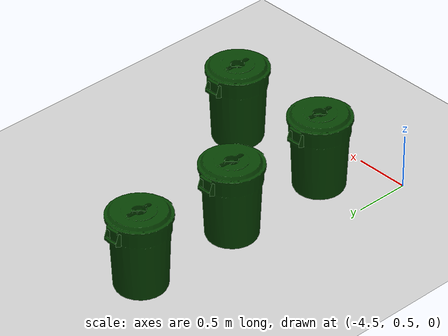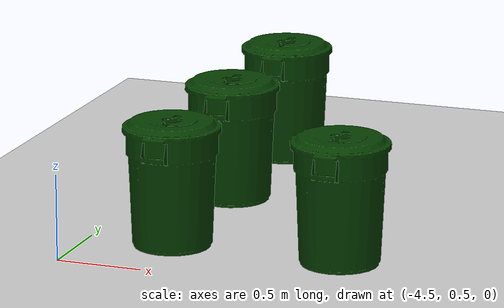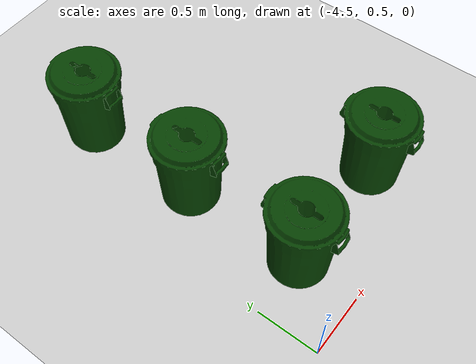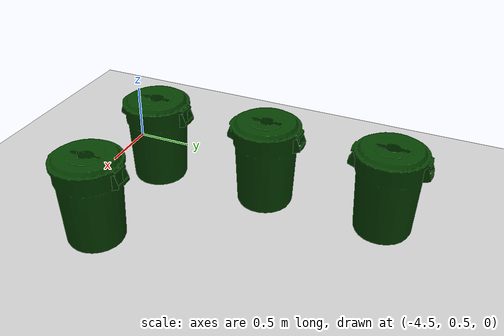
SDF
<sdf version="1.7">
 <world name="default">
  <light name="sun" type="directional">
   <pose>0 0 10 0 -0 0</pose>
   <diffuse>0.8 0.8 0.8 1</diffuse>
   <specular>0.2 0.2 0.2 1</specular>
   <attenuation>
    <range>1000</range>
    <constant>0.9</constant>
    <linear>0.01</linear>
    <quadratic>0.001</quadratic>
   </attenuation>
   <direction>-0.5 0.1 -0.9</direction>
   <spot><inner_angle>0</inner_angle><outer_angle>0</outer_angle><falloff>0</falloff></spot>
  </light>
  <model name="ground_plane">
   <static>1</static>
   <link name="link">
    <collision name="collision">
     <geometry><plane><normal>0 0 1</normal><size>100 100</size></plane></geometry>
     <surface>
      <contact><collide_bitmask>65535</collide_bitmask></contact>
      <friction><ode><mu>100</mu><mu2>50</mu2></ode></friction>
     </surface>
    </collision>
    <visual name="visual">
     <cast_shadows>0</cast_shadows>
     <geometry><plane><normal>0 0 1</normal><size>100 100</size></plane></geometry>
     <material>
      <script><uri>file://media/materials/scripts/gazebo.material</uri><name>Gazebo/Grey</name></script>
     </material>
    </visual>
   </link>
  </model>
  <physics type="ode">
   <real_time_update_rate>1000</real_time_update_rate>
   <max_step_size>0.001</max_step_size>
   <real_time_factor>1</real_time_factor>
   <ode>
    <solver>
     <type>quick</type>
     <iters>150</iters>
     <precon_iters>0</precon_iters>
     <sor>1.4</sor>
     <use_dynamic_moi_rescaling>1</use_dynamic_moi_rescaling>
    </solver>
    <constraints>
     <cfm>1e-05</cfm>
     <erp>0.2</erp>
     <contact_max_correcting_vel>1</contact_max_correcting_vel>
     <contact_surface_layer>0.01</contact_surface_layer>
    </constraints>
   </ode>
  </physics>
  <scene><ambient>0.4 0.4 0.4 1</ambient><background>0.7 0.7 0.7 1</background><shadows>1</shadows></scene>
  <gravity>0 0 -9.8</gravity>
  <magnetic_field>6e-06 2.3e-05 -4.2e-05</magnetic_field>
  <atmosphere type="adiabatic"/>
  <spherical_coordinates>
   <surface_model>EARTH_WGS84</surface_model>
   <latitude_deg>0</latitude_deg>
   <longitude_deg>0</longitude_deg>
   <elevation>0</elevation>
   <heading_deg>0</heading_deg>
  </spherical_coordinates>
  <model name="trash_can_1">
   <link name="link">
    <inertial>
     <pose>0 0 0.3683 0 -0 0</pose>
     <mass>4.83076</mass>
     <inertia>
      <ixx>0.281534</ixx>
      <ixy>0</ixy>
      <ixz>0</ixz>
      <iyy>0.281534</iyy>
      <iyz>0</iyz>
      <izz>0.126223</izz>
     </inertia>
    </inertial>
    <visual name="visual">
     <geometry><mesh><uri>model://first_2015_trash_can/meshes/trash_can.dae</uri></mesh></geometry>
    </visual>
    <collision name="collision">
     <geometry><mesh><uri>model://first_2015_trash_can/meshes/trash_can.dae</uri></mesh></geometry>
    </collision>
   </link>
   <pose>-2.99999 0.999999 -1e-06 -4e-06 1.7e-05 -0.00092</pose>
  </model>
  <model name="trash_can_2">
   <link name="link">
    <inertial>
     <pose>0 0 0.3683 0 -0 0</pose>
     <mass>4.83076</mass>
     <inertia>
      <ixx>0.281534</ixx>
      <ixy>0</ixy>
      <ixz>0</ixz>
      <iyy>0.281534</iyy>
      <iyz>0</iyz>
      <izz>0.126223</izz>
     </inertia>
    </inertial>
    <visual name="visual">
     <geometry><mesh><uri>model://first_2015_trash_can/meshes/trash_can.dae</uri></mesh></geometry>
    </visual>
    <collision name="collision">
     <geometry><mesh><uri>model://first_2015_trash_can/meshes/trash_can.dae</uri></mesh></geometry>
    </collision>
   </link>
   <pose>-3.99987 2.99994 -2e-06 6e-06 8e-06 -0.000619</pose>
  </model>
  <model name="trash_can_3">
   <link name="link">
    <inertial>
     <pose>0 0 0.3683 0 -0 0</pose>
     <mass>4.83076</mass>
     <inertia>
      <ixx>0.281534</ixx>
      <ixy>0</ixy>
      <ixz>0</ixz>
      <iyy>0.281534</iyy>
      <iyz>0</iyz>
      <izz>0.126223</izz>
     </inertia>
    </inertial>
    <visual name="visual">
     <geometry><mesh><uri>model://first_2015_trash_can/meshes/trash_can.dae</uri></mesh></geometry>
    </visual>
    <collision name="collision">
     <geometry><mesh><uri>model://first_2015_trash_can/meshes/trash_can.dae</uri></mesh></geometry>
    </collision>
   </link>
   <pose>-3.99994 1.99997 3e-06 3.3e-05 1e-05 -0.000278</pose>
  </model>
  <model name="trash_can_4">
   <link name="link">
    <inertial>
     <pose>0 0 0.3683 0 -0 0</pose>
     <mass>4.83076</mass>
     <inertia>
      <ixx>0.281534</ixx>
      <ixy>0</ixy>
      <ixz>0</ixz>
      <iyy>0.281534</iyy>
      <iyz>0</iyz>
      <izz>0.126223</izz>
     </inertia>
    </inertial>
    <visual name="visual">
     <geometry><mesh><uri>model://first_2015_trash_can/meshes/trash_can.dae</uri></mesh></geometry>
    </visual>
    <collision name="collision">
     <geometry><mesh><uri>model://first_2015_trash_can/meshes/trash_can.dae</uri></mesh></geometry>
    </collision>
   </link>
   <pose>-3.99998 0.999987 -8e-06 2.1e-05 4e-06 -0.000166</pose>
  </model>
 </world>
</sdf>
